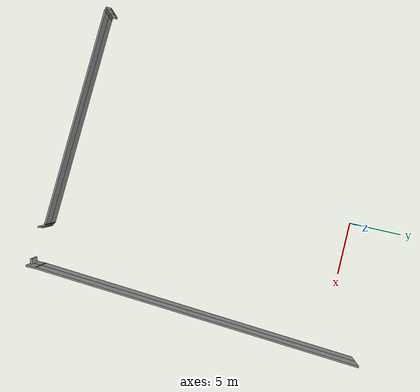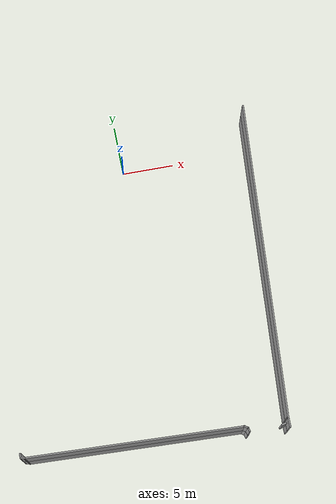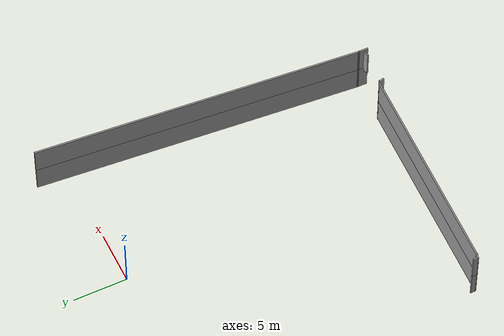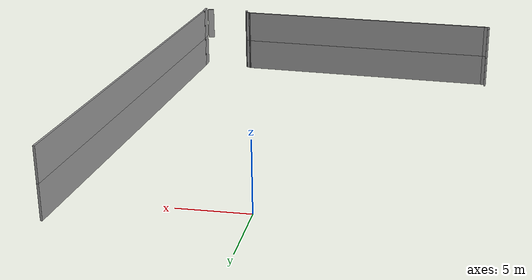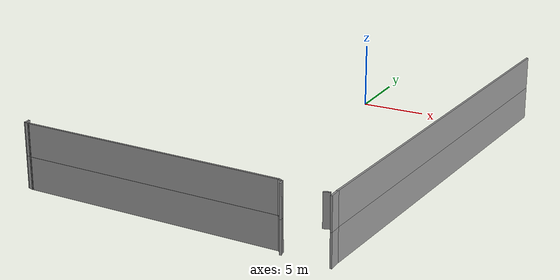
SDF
<sdf version="1.7">
 <model name="EnvDC01">
  <link name="Wall_191">
   <pose>-14.1859 -26.3878 0 0 0 -1.5708</pose>
   <visual name="Wall_191_Visual">
    <pose>0 0 1.25 0 -0 0</pose>
    <geometry><box><size>0.5 0.15 2.5</size></box></geometry>
    <material>
     <script><uri>file://media/materials/scripts/gazebo.material</uri><name>Gazebo/Grey</name></script>
     <ambient>1 1 1 1</ambient>
     <shader type="pixel"/>
    </material>
    <meta><layer>0</layer></meta>
   </visual>
   <collision name="Wall_191_Collision">
    <pose>0 0 1.25 0 -0 0</pose>
    <geometry><box><size>0.5 0.15 2.5</size></box></geometry>
    <surface>
     <friction>
      <ode><mu>1</mu><mu2>1</mu2><fdir1>0 0 0</fdir1><slip1>0</slip1><slip2>0</slip2></ode>
      <torsional>
       <coefficient>1</coefficient>
       <patch_radius>0</patch_radius>
       <surface_radius>0</surface_radius>
       <use_patch_radius>1</use_patch_radius>
       <ode><slip>0</slip></ode>
      </torsional>
     </friction>
     <bounce><restitution_coefficient>0</restitution_coefficient><threshold>1e+06</threshold></bounce>
     <contact>
      <collide_without_contact>0</collide_without_contact>
      <collide_without_contact_bitmask>1</collide_without_contact_bitmask>
      <collide_bitmask>1</collide_bitmask>
      <ode>
       <soft_cfm>0</soft_cfm>
       <soft_erp>0.2</soft_erp>
       <kp>1e+13</kp>
       <kd>1</kd>
       <max_vel>0.01</max_vel>
       <min_depth>0</min_depth>
      </ode>
      <bullet>
       <split_impulse>1</split_impulse>
       <split_impulse_penetration_threshold>-0.01</split_impulse_penetration_threshold>
       <soft_cfm>0</soft_cfm>
       <soft_erp>0.2</soft_erp>
       <kp>1e+13</kp>
       <kd>1</kd>
      </bullet>
     </contact>
    </surface>
   </collision>
  </link>
  <link name="Wall_193">
   <pose>-14.0168 -26.6081 0 0 0 -0.261799</pose>
   <visual name="Wall_193_Visual">
    <pose>0 0 1.25 0 -0 0</pose>
    <geometry><box><size>0.5 0.15 2.5</size></box></geometry>
    <material>
     <script><uri>file://media/materials/scripts/gazebo.material</uri><name>Gazebo/Grey</name></script>
     <ambient>1 1 1 1</ambient>
     <shader type="pixel"/>
    </material>
    <meta><layer>0</layer></meta>
   </visual>
   <collision name="Wall_193_Collision">
    <pose>0 0 1.25 0 -0 0</pose>
    <geometry><box><size>0.5 0.15 2.5</size></box></geometry>
    <surface>
     <friction>
      <ode><mu>1</mu><mu2>1</mu2><fdir1>0 0 0</fdir1><slip1>0</slip1><slip2>0</slip2></ode>
      <torsional>
       <coefficient>1</coefficient>
       <patch_radius>0</patch_radius>
       <surface_radius>0</surface_radius>
       <use_patch_radius>1</use_patch_radius>
       <ode><slip>0</slip></ode>
      </torsional>
     </friction>
     <bounce><restitution_coefficient>0</restitution_coefficient><threshold>1e+06</threshold></bounce>
     <contact>
      <collide_without_contact>0</collide_without_contact>
      <collide_without_contact_bitmask>1</collide_without_contact_bitmask>
      <collide_bitmask>1</collide_bitmask>
      <ode>
       <soft_cfm>0</soft_cfm>
       <soft_erp>0.2</soft_erp>
       <kp>1e+13</kp>
       <kd>1</kd>
       <max_vel>0.01</max_vel>
       <min_depth>0</min_depth>
      </ode>
      <bullet>
       <split_impulse>1</split_impulse>
       <split_impulse_penetration_threshold>-0.01</split_impulse_penetration_threshold>
       <soft_cfm>0</soft_cfm>
       <soft_erp>0.2</soft_erp>
       <kp>1e+13</kp>
       <kd>1</kd>
      </bullet>
     </contact>
    </surface>
   </collision>
  </link>
  <link name="Wall_194">
   <pose>-3.82435 -27.1433 0 0 0 -0.048839</pose>
   <visual name="Wall_194_Visual">
    <pose>0 0 1.25 0 -0 0</pose>
    <geometry><box><size>20.2208 0.15 2.5</size></box></geometry>
    <material>
     <script><uri>file://media/materials/scripts/gazebo.material</uri><name>Gazebo/Grey</name></script>
     <ambient>1 1 1 1</ambient>
     <shader type="pixel"/>
    </material>
    <meta><layer>0</layer></meta>
   </visual>
   <collision name="Wall_194_Collision">
    <pose>0 0 1.25 0 -0 0</pose>
    <geometry><box><size>20.2208 0.15 2.5</size></box></geometry>
    <surface>
     <friction>
      <ode><mu>1</mu><mu2>1</mu2><fdir1>0 0 0</fdir1><slip1>0</slip1><slip2>0</slip2></ode>
      <torsional>
       <coefficient>1</coefficient>
       <patch_radius>0</patch_radius>
       <surface_radius>0</surface_radius>
       <use_patch_radius>1</use_patch_radius>
       <ode><slip>0</slip></ode>
      </torsional>
     </friction>
     <bounce><restitution_coefficient>0</restitution_coefficient><threshold>1e+06</threshold></bounce>
     <contact>
      <collide_without_contact>0</collide_without_contact>
      <collide_without_contact_bitmask>1</collide_without_contact_bitmask>
      <collide_bitmask>1</collide_bitmask>
      <ode>
       <soft_cfm>0</soft_cfm>
       <soft_erp>0.2</soft_erp>
       <kp>1e+13</kp>
       <kd>1</kd>
       <max_vel>0.01</max_vel>
       <min_depth>0</min_depth>
      </ode>
      <bullet>
       <split_impulse>1</split_impulse>
       <split_impulse_penetration_threshold>-0.01</split_impulse_penetration_threshold>
       <soft_cfm>0</soft_cfm>
       <soft_erp>0.2</soft_erp>
       <kp>1e+13</kp>
       <kd>1</kd>
      </bullet>
     </contact>
    </surface>
   </collision>
  </link>
  <link name="Wall_195">
   <pose>6.35065 -27.7207 0 0 0 -0.523599</pose>
   <visual name="Wall_195_Visual">
    <pose>0 0 1.25 0 -0 0</pose>
    <geometry><box><size>0.5 0.15 2.5</size></box></geometry>
    <material>
     <script><uri>file://media/materials/scripts/gazebo.material</uri><name>Gazebo/Grey</name></script>
     <ambient>1 1 1 1</ambient>
     <shader type="pixel"/>
    </material>
    <meta><layer>0</layer></meta>
   </visual>
   <collision name="Wall_195_Collision">
    <pose>0 0 1.25 0 -0 0</pose>
    <geometry><box><size>0.5 0.15 2.5</size></box></geometry>
    <surface>
     <friction>
      <ode><mu>1</mu><mu2>1</mu2><fdir1>0 0 0</fdir1><slip1>0</slip1><slip2>0</slip2></ode>
      <torsional>
       <coefficient>1</coefficient>
       <patch_radius>0</patch_radius>
       <surface_radius>0</surface_radius>
       <use_patch_radius>1</use_patch_radius>
       <ode><slip>0</slip></ode>
      </torsional>
     </friction>
     <bounce><restitution_coefficient>0</restitution_coefficient><threshold>1e+06</threshold></bounce>
     <contact>
      <collide_without_contact>0</collide_without_contact>
      <collide_without_contact_bitmask>1</collide_without_contact_bitmask>
      <collide_bitmask>1</collide_bitmask>
      <ode>
       <soft_cfm>0</soft_cfm>
       <soft_erp>0.2</soft_erp>
       <kp>1e+13</kp>
       <kd>1</kd>
       <max_vel>0.01</max_vel>
       <min_depth>0</min_depth>
      </ode>
      <bullet>
       <split_impulse>1</split_impulse>
       <split_impulse_penetration_threshold>-0.01</split_impulse_penetration_threshold>
       <soft_cfm>0</soft_cfm>
       <soft_erp>0.2</soft_erp>
       <kp>1e+13</kp>
       <kd>1</kd>
      </bullet>
     </contact>
    </surface>
   </collision>
  </link>
  <link name="Wall_197">
   <pose>6.54749 -27.9773 0 0 0 -1.309</pose>
   <visual name="Wall_197_Visual">
    <pose>0 0 1.25 0 -0 0</pose>
    <geometry><box><size>0.5 0.15 2.5</size></box></geometry>
    <material>
     <script><uri>file://media/materials/scripts/gazebo.material</uri><name>Gazebo/Grey</name></script>
     <ambient>1 1 1 1</ambient>
     <shader type="pixel"/>
    </material>
    <meta><layer>0</layer></meta>
   </visual>
   <collision name="Wall_197_Collision">
    <pose>0 0 1.25 0 -0 0</pose>
    <geometry><box><size>0.5 0.15 2.5</size></box></geometry>
    <surface>
     <friction>
      <ode><mu>1</mu><mu2>1</mu2><fdir1>0 0 0</fdir1><slip1>0</slip1><slip2>0</slip2></ode>
      <torsional>
       <coefficient>1</coefficient>
       <patch_radius>0</patch_radius>
       <surface_radius>0</surface_radius>
       <use_patch_radius>1</use_patch_radius>
       <ode><slip>0</slip></ode>
      </torsional>
     </friction>
     <bounce><restitution_coefficient>0</restitution_coefficient><threshold>1e+06</threshold></bounce>
     <contact>
      <collide_without_contact>0</collide_without_contact>
      <collide_without_contact_bitmask>1</collide_without_contact_bitmask>
      <collide_bitmask>1</collide_bitmask>
      <ode>
       <soft_cfm>0</soft_cfm>
       <soft_erp>0.2</soft_erp>
       <kp>1e+13</kp>
       <kd>1</kd>
       <max_vel>0.01</max_vel>
       <min_depth>0</min_depth>
      </ode>
      <bullet>
       <split_impulse>1</split_impulse>
       <split_impulse_penetration_threshold>-0.01</split_impulse_penetration_threshold>
       <soft_cfm>0</soft_cfm>
       <soft_erp>0.2</soft_erp>
       <kp>1e+13</kp>
       <kd>1</kd>
      </bullet>
     </contact>
    </surface>
   </collision>
  </link>
  <link name="Wall_265">
   <pose>11.4127 -12.3181 2.5 0 0 -1.64406</pose>
   <visual name="Wall_265_Visual">
    <pose>0 0 1.25 0 -0 0</pose>
    <geometry><box><size>30.7553 0.15 2.5</size></box></geometry>
    <material>
     <script><uri>file://media/materials/scripts/gazebo.material</uri><name>Gazebo/Grey</name></script>
     <ambient>1 1 1 1</ambient>
     <shader type="pixel"/>
    </material>
    <meta><layer>1</layer></meta>
   </visual>
   <collision name="Wall_265_Collision">
    <pose>0 0 1.25 0 -0 0</pose>
    <geometry><box><size>30.7553 0.15 2.5</size></box></geometry>
    <surface>
     <friction>
      <ode><mu>1</mu><mu2>1</mu2><fdir1>0 0 0</fdir1><slip1>0</slip1><slip2>0</slip2></ode>
      <torsional>
       <coefficient>1</coefficient>
       <patch_radius>0</patch_radius>
       <surface_radius>0</surface_radius>
       <use_patch_radius>1</use_patch_radius>
       <ode><slip>0</slip></ode>
      </torsional>
     </friction>
     <bounce><restitution_coefficient>0</restitution_coefficient><threshold>1e+06</threshold></bounce>
     <contact>
      <collide_without_contact>0</collide_without_contact>
      <collide_without_contact_bitmask>1</collide_without_contact_bitmask>
      <collide_bitmask>1</collide_bitmask>
      <ode>
       <soft_cfm>0</soft_cfm>
       <soft_erp>0.2</soft_erp>
       <kp>1e+13</kp>
       <kd>1</kd>
       <max_vel>0.01</max_vel>
       <min_depth>0</min_depth>
      </ode>
      <bullet>
       <split_impulse>1</split_impulse>
       <split_impulse_penetration_threshold>-0.01</split_impulse_penetration_threshold>
       <soft_cfm>0</soft_cfm>
       <soft_erp>0.2</soft_erp>
       <kp>1e+13</kp>
       <kd>1</kd>
      </bullet>
     </contact>
    </surface>
   </collision>
  </link>
  <link name="Wall_266">
   <pose>10.2926 -28.0047 2.5 0 0 -1.5708</pose>
   <visual name="Wall_266_Visual">
    <pose>0 0 1.25 0 -0 0</pose>
    <geometry><box><size>1 0.15 2.5</size></box></geometry>
    <material>
     <script><uri>file://media/materials/scripts/gazebo.material</uri><name>Gazebo/Grey</name></script>
     <ambient>1 1 1 1</ambient>
     <shader type="pixel"/>
    </material>
    <meta><layer>1</layer></meta>
   </visual>
   <collision name="Wall_266_Collision">
    <pose>0 0 1.25 0 -0 0</pose>
    <geometry><box><size>1 0.15 2.5</size></box></geometry>
    <surface>
     <friction>
      <ode><mu>1</mu><mu2>1</mu2><fdir1>0 0 0</fdir1><slip1>0</slip1><slip2>0</slip2></ode>
      <torsional>
       <coefficient>1</coefficient>
       <patch_radius>0</patch_radius>
       <surface_radius>0</surface_radius>
       <use_patch_radius>1</use_patch_radius>
       <ode><slip>0</slip></ode>
      </torsional>
     </friction>
     <bounce><restitution_coefficient>0</restitution_coefficient><threshold>1e+06</threshold></bounce>
     <contact>
      <collide_without_contact>0</collide_without_contact>
      <collide_without_contact_bitmask>1</collide_without_contact_bitmask>
      <collide_bitmask>1</collide_bitmask>
      <ode>
       <soft_cfm>0</soft_cfm>
       <soft_erp>0.2</soft_erp>
       <kp>1e+13</kp>
       <kd>1</kd>
       <max_vel>0.01</max_vel>
       <min_depth>0</min_depth>
      </ode>
      <bullet>
       <split_impulse>1</split_impulse>
       <split_impulse_penetration_threshold>-0.01</split_impulse_penetration_threshold>
       <soft_cfm>0</soft_cfm>
       <soft_erp>0.2</soft_erp>
       <kp>1e+13</kp>
       <kd>1</kd>
      </bullet>
     </contact>
    </surface>
   </collision>
  </link>
  <link name="Wall_367">
   <pose>-14.1859 -26.3878 2.5 0 0 -1.5708</pose>
   <visual name="Wall_367_Visual">
    <pose>0 0 1.25 0 -0 0</pose>
    <geometry><box><size>0.5 0.15 2.5</size></box></geometry>
    <material>
     <script><uri>file://media/materials/scripts/gazebo.material</uri><name>Gazebo/Grey</name></script>
     <ambient>1 1 1 1</ambient>
     <shader type="pixel"/>
    </material>
    <meta><layer>1</layer></meta>
   </visual>
   <collision name="Wall_367_Collision">
    <pose>0 0 1.25 0 -0 0</pose>
    <geometry><box><size>0.5 0.15 2.5</size></box></geometry>
    <surface>
     <friction>
      <ode><mu>1</mu><mu2>1</mu2><fdir1>0 0 0</fdir1><slip1>0</slip1><slip2>0</slip2></ode>
      <torsional>
       <coefficient>1</coefficient>
       <patch_radius>0</patch_radius>
       <surface_radius>0</surface_radius>
       <use_patch_radius>1</use_patch_radius>
       <ode><slip>0</slip></ode>
      </torsional>
     </friction>
     <bounce><restitution_coefficient>0</restitution_coefficient><threshold>1e+06</threshold></bounce>
     <contact>
      <collide_without_contact>0</collide_without_contact>
      <collide_without_contact_bitmask>1</collide_without_contact_bitmask>
      <collide_bitmask>1</collide_bitmask>
      <ode>
       <soft_cfm>0</soft_cfm>
       <soft_erp>0.2</soft_erp>
       <kp>1e+13</kp>
       <kd>1</kd>
       <max_vel>0.01</max_vel>
       <min_depth>0</min_depth>
      </ode>
      <bullet>
       <split_impulse>1</split_impulse>
       <split_impulse_penetration_threshold>-0.01</split_impulse_penetration_threshold>
       <soft_cfm>0</soft_cfm>
       <soft_erp>0.2</soft_erp>
       <kp>1e+13</kp>
       <kd>1</kd>
      </bullet>
     </contact>
    </surface>
   </collision>
  </link>
  <link name="Wall_368">
   <pose>-14.0168 -26.6081 2.5 0 0 -0.261799</pose>
   <visual name="Wall_368_Visual">
    <pose>0 0 1.25 0 -0 0</pose>
    <geometry><box><size>0.5 0.15 2.5</size></box></geometry>
    <material>
     <script><uri>file://media/materials/scripts/gazebo.material</uri><name>Gazebo/Grey</name></script>
     <ambient>1 1 1 1</ambient>
     <shader type="pixel"/>
    </material>
    <meta><layer>1</layer></meta>
   </visual>
   <collision name="Wall_368_Collision">
    <pose>0 0 1.25 0 -0 0</pose>
    <geometry><box><size>0.5 0.15 2.5</size></box></geometry>
    <surface>
     <friction>
      <ode><mu>1</mu><mu2>1</mu2><fdir1>0 0 0</fdir1><slip1>0</slip1><slip2>0</slip2></ode>
      <torsional>
       <coefficient>1</coefficient>
       <patch_radius>0</patch_radius>
       <surface_radius>0</surface_radius>
       <use_patch_radius>1</use_patch_radius>
       <ode><slip>0</slip></ode>
      </torsional>
     </friction>
     <bounce><restitution_coefficient>0</restitution_coefficient><threshold>1e+06</threshold></bounce>
     <contact>
      <collide_without_contact>0</collide_without_contact>
      <collide_without_contact_bitmask>1</collide_without_contact_bitmask>
      <collide_bitmask>1</collide_bitmask>
      <ode>
       <soft_cfm>0</soft_cfm>
       <soft_erp>0.2</soft_erp>
       <kp>1e+13</kp>
       <kd>1</kd>
       <max_vel>0.01</max_vel>
       <min_depth>0</min_depth>
      </ode>
      <bullet>
       <split_impulse>1</split_impulse>
       <split_impulse_penetration_threshold>-0.01</split_impulse_penetration_threshold>
       <soft_cfm>0</soft_cfm>
       <soft_erp>0.2</soft_erp>
       <kp>1e+13</kp>
       <kd>1</kd>
      </bullet>
     </contact>
    </surface>
   </collision>
  </link>
  <link name="Wall_369">
   <pose>-3.82435 -27.1433 2.5 0 0 -0.048839</pose>
   <visual name="Wall_369_Visual">
    <pose>0 0 1.25 0 -0 0</pose>
    <geometry><box><size>20.2208 0.15 2.5</size></box></geometry>
    <material>
     <script><uri>file://media/materials/scripts/gazebo.material</uri><name>Gazebo/Grey</name></script>
     <ambient>1 1 1 1</ambient>
     <shader type="pixel"/>
    </material>
    <meta><layer>1</layer></meta>
   </visual>
   <collision name="Wall_369_Collision">
    <pose>0 0 1.25 0 -0 0</pose>
    <geometry><box><size>20.2208 0.15 2.5</size></box></geometry>
    <surface>
     <friction>
      <ode><mu>1</mu><mu2>1</mu2><fdir1>0 0 0</fdir1><slip1>0</slip1><slip2>0</slip2></ode>
      <torsional>
       <coefficient>1</coefficient>
       <patch_radius>0</patch_radius>
       <surface_radius>0</surface_radius>
       <use_patch_radius>1</use_patch_radius>
       <ode><slip>0</slip></ode>
      </torsional>
     </friction>
     <bounce><restitution_coefficient>0</restitution_coefficient><threshold>1e+06</threshold></bounce>
     <contact>
      <collide_without_contact>0</collide_without_contact>
      <collide_without_contact_bitmask>1</collide_without_contact_bitmask>
      <collide_bitmask>1</collide_bitmask>
      <ode>
       <soft_cfm>0</soft_cfm>
       <soft_erp>0.2</soft_erp>
       <kp>1e+13</kp>
       <kd>1</kd>
       <max_vel>0.01</max_vel>
       <min_depth>0</min_depth>
      </ode>
      <bullet>
       <split_impulse>1</split_impulse>
       <split_impulse_penetration_threshold>-0.01</split_impulse_penetration_threshold>
       <soft_cfm>0</soft_cfm>
       <soft_erp>0.2</soft_erp>
       <kp>1e+13</kp>
       <kd>1</kd>
      </bullet>
     </contact>
    </surface>
   </collision>
  </link>
  <link name="Wall_370">
   <pose>6.35065 -27.7207 2.5 0 0 -0.523599</pose>
   <visual name="Wall_370_Visual">
    <pose>0 0 1.25 0 -0 0</pose>
    <geometry><box><size>0.5 0.15 2.5</size></box></geometry>
    <material>
     <script><uri>file://media/materials/scripts/gazebo.material</uri><name>Gazebo/Grey</name></script>
     <ambient>1 1 1 1</ambient>
     <shader type="pixel"/>
    </material>
    <meta><layer>1</layer></meta>
   </visual>
   <collision name="Wall_370_Collision">
    <pose>0 0 1.25 0 -0 0</pose>
    <geometry><box><size>0.5 0.15 2.5</size></box></geometry>
    <surface>
     <friction>
      <ode><mu>1</mu><mu2>1</mu2><fdir1>0 0 0</fdir1><slip1>0</slip1><slip2>0</slip2></ode>
      <torsional>
       <coefficient>1</coefficient>
       <patch_radius>0</patch_radius>
       <surface_radius>0</surface_radius>
       <use_patch_radius>1</use_patch_radius>
       <ode><slip>0</slip></ode>
      </torsional>
     </friction>
     <bounce><restitution_coefficient>0</restitution_coefficient><threshold>1e+06</threshold></bounce>
     <contact>
      <collide_without_contact>0</collide_without_contact>
      <collide_without_contact_bitmask>1</collide_without_contact_bitmask>
      <collide_bitmask>1</collide_bitmask>
      <ode>
       <soft_cfm>0</soft_cfm>
       <soft_erp>0.2</soft_erp>
       <kp>1e+13</kp>
       <kd>1</kd>
       <max_vel>0.01</max_vel>
       <min_depth>0</min_depth>
      </ode>
      <bullet>
       <split_impulse>1</split_impulse>
       <split_impulse_penetration_threshold>-0.01</split_impulse_penetration_threshold>
       <soft_cfm>0</soft_cfm>
       <soft_erp>0.2</soft_erp>
       <kp>1e+13</kp>
       <kd>1</kd>
      </bullet>
     </contact>
    </surface>
   </collision>
  </link>
  <link name="Wall_371">
   <pose>6.54749 -27.9773 2.5 0 0 -1.309</pose>
   <visual name="Wall_371_Visual">
    <pose>0 0 1.25 0 -0 0</pose>
    <geometry><box><size>0.5 0.15 2.5</size></box></geometry>
    <material>
     <script><uri>file://media/materials/scripts/gazebo.material</uri><name>Gazebo/Grey</name></script>
     <ambient>1 1 1 1</ambient>
     <shader type="pixel"/>
    </material>
    <meta><layer>1</layer></meta>
   </visual>
   <collision name="Wall_371_Collision">
    <pose>0 0 1.25 0 -0 0</pose>
    <geometry><box><size>0.5 0.15 2.5</size></box></geometry>
    <surface>
     <friction>
      <ode><mu>1</mu><mu2>1</mu2><fdir1>0 0 0</fdir1><slip1>0</slip1><slip2>0</slip2></ode>
      <torsional>
       <coefficient>1</coefficient>
       <patch_radius>0</patch_radius>
       <surface_radius>0</surface_radius>
       <use_patch_radius>1</use_patch_radius>
       <ode><slip>0</slip></ode>
      </torsional>
     </friction>
     <bounce><restitution_coefficient>0</restitution_coefficient><threshold>1e+06</threshold></bounce>
     <contact>
      <collide_without_contact>0</collide_without_contact>
      <collide_without_contact_bitmask>1</collide_without_contact_bitmask>
      <collide_bitmask>1</collide_bitmask>
      <ode>
       <soft_cfm>0</soft_cfm>
       <soft_erp>0.2</soft_erp>
       <kp>1e+13</kp>
       <kd>1</kd>
       <max_vel>0.01</max_vel>
       <min_depth>0</min_depth>
      </ode>
      <bullet>
       <split_impulse>1</split_impulse>
       <split_impulse_penetration_threshold>-0.01</split_impulse_penetration_threshold>
       <soft_cfm>0</soft_cfm>
       <soft_erp>0.2</soft_erp>
       <kp>1e+13</kp>
       <kd>1</kd>
      </bullet>
     </contact>
    </surface>
   </collision>
  </link>
  <link name="Wall_378">
   <pose>9.79108 -28.1072 2.5 0 -0 0.261799</pose>
   <visual name="Wall_378_Visual">
    <pose>0 0 1.25 0 -0 0</pose>
    <geometry><box><size>0.5 0.15 2.5</size></box></geometry>
    <material>
     <script><uri>file://media/materials/scripts/gazebo.material</uri><name>Gazebo/Grey</name></script>
     <ambient>1 1 1 1</ambient>
     <shader type="pixel"/>
    </material>
    <meta><layer>1</layer></meta>
   </visual>
   <collision name="Wall_378_Collision">
    <pose>0 0 1.25 0 -0 0</pose>
    <geometry><box><size>0.5 0.15 2.5</size></box></geometry>
    <surface>
     <friction>
      <ode><mu>1</mu><mu2>1</mu2><fdir1>0 0 0</fdir1><slip1>0</slip1><slip2>0</slip2></ode>
      <torsional>
       <coefficient>1</coefficient>
       <patch_radius>0</patch_radius>
       <surface_radius>0</surface_radius>
       <use_patch_radius>1</use_patch_radius>
       <ode><slip>0</slip></ode>
      </torsional>
     </friction>
     <bounce><restitution_coefficient>0</restitution_coefficient><threshold>1e+06</threshold></bounce>
     <contact>
      <collide_without_contact>0</collide_without_contact>
      <collide_without_contact_bitmask>1</collide_without_contact_bitmask>
      <collide_bitmask>1</collide_bitmask>
      <ode>
       <soft_cfm>0</soft_cfm>
       <soft_erp>0.2</soft_erp>
       <kp>1e+13</kp>
       <kd>1</kd>
       <max_vel>0.01</max_vel>
       <min_depth>0</min_depth>
      </ode>
      <bullet>
       <split_impulse>1</split_impulse>
       <split_impulse_penetration_threshold>-0.01</split_impulse_penetration_threshold>
       <soft_cfm>0</soft_cfm>
       <soft_erp>0.2</soft_erp>
       <kp>1e+13</kp>
       <kd>1</kd>
      </bullet>
     </contact>
    </surface>
   </collision>
  </link>
  <link name="Wall_40">
   <pose>11.4127 -12.3181 0 0 0 -1.64406</pose>
   <visual name="Wall_40_Visual">
    <pose>0 0 1.25 0 -0 0</pose>
    <geometry><box><size>30.7553 0.15 2.5</size></box></geometry>
    <material>
     <script><uri>file://media/materials/scripts/gazebo.material</uri><name>Gazebo/Grey</name></script>
     <ambient>1 1 1 1</ambient>
     <shader type="pixel"/>
    </material>
    <meta><layer>0</layer></meta>
   </visual>
   <collision name="Wall_40_Collision">
    <pose>0 0 1.25 0 -0 0</pose>
    <geometry><box><size>30.7553 0.15 2.5</size></box></geometry>
    <surface>
     <friction>
      <ode><mu>1</mu><mu2>1</mu2><fdir1>0 0 0</fdir1><slip1>0</slip1><slip2>0</slip2></ode>
      <torsional>
       <coefficient>1</coefficient>
       <patch_radius>0</patch_radius>
       <surface_radius>0</surface_radius>
       <use_patch_radius>1</use_patch_radius>
       <ode><slip>0</slip></ode>
      </torsional>
     </friction>
     <bounce><restitution_coefficient>0</restitution_coefficient><threshold>1e+06</threshold></bounce>
     <contact>
      <collide_without_contact>0</collide_without_contact>
      <collide_without_contact_bitmask>1</collide_without_contact_bitmask>
      <collide_bitmask>1</collide_bitmask>
      <ode>
       <soft_cfm>0</soft_cfm>
       <soft_erp>0.2</soft_erp>
       <kp>1e+13</kp>
       <kd>1</kd>
       <max_vel>0.01</max_vel>
       <min_depth>0</min_depth>
      </ode>
      <bullet>
       <split_impulse>1</split_impulse>
       <split_impulse_penetration_threshold>-0.01</split_impulse_penetration_threshold>
       <soft_cfm>0</soft_cfm>
       <soft_erp>0.2</soft_erp>
       <kp>1e+13</kp>
       <kd>1</kd>
      </bullet>
     </contact>
    </surface>
   </collision>
  </link>
  <link name="Wall_41">
   <pose>10.2926 -28.0047 0 0 0 -1.5708</pose>
   <visual name="Wall_41_Visual">
    <pose>0 0 1.25 0 -0 0</pose>
    <geometry><box><size>1 0.15 2.5</size></box></geometry>
    <material>
     <script><uri>file://media/materials/scripts/gazebo.material</uri><name>Gazebo/Grey</name></script>
     <ambient>1 1 1 1</ambient>
     <shader type="pixel"/>
    </material>
    <meta><layer>0</layer></meta>
   </visual>
   <collision name="Wall_41_Collision">
    <pose>0 0 1.25 0 -0 0</pose>
    <geometry><box><size>1 0.15 2.5</size></box></geometry>
    <surface>
     <friction>
      <ode><mu>1</mu><mu2>1</mu2><fdir1>0 0 0</fdir1><slip1>0</slip1><slip2>0</slip2></ode>
      <torsional>
       <coefficient>1</coefficient>
       <patch_radius>0</patch_radius>
       <surface_radius>0</surface_radius>
       <use_patch_radius>1</use_patch_radius>
       <ode><slip>0</slip></ode>
      </torsional>
     </friction>
     <bounce><restitution_coefficient>0</restitution_coefficient><threshold>1e+06</threshold></bounce>
     <contact>
      <collide_without_contact>0</collide_without_contact>
      <collide_without_contact_bitmask>1</collide_without_contact_bitmask>
      <collide_bitmask>1</collide_bitmask>
      <ode>
       <soft_cfm>0</soft_cfm>
       <soft_erp>0.2</soft_erp>
       <kp>1e+13</kp>
       <kd>1</kd>
       <max_vel>0.01</max_vel>
       <min_depth>0</min_depth>
      </ode>
      <bullet>
       <split_impulse>1</split_impulse>
       <split_impulse_penetration_threshold>-0.01</split_impulse_penetration_threshold>
       <soft_cfm>0</soft_cfm>
       <soft_erp>0.2</soft_erp>
       <kp>1e+13</kp>
       <kd>1</kd>
      </bullet>
     </contact>
    </surface>
   </collision>
  </link>
  <static>1</static>
 </model>
</sdf>
